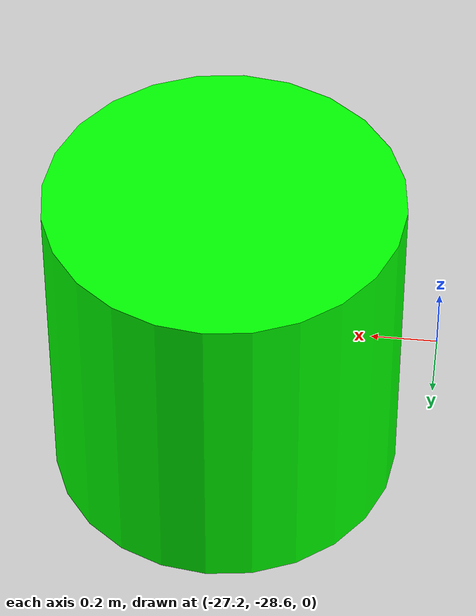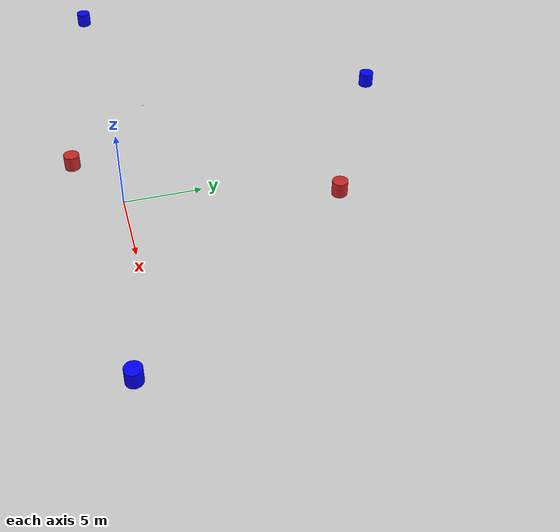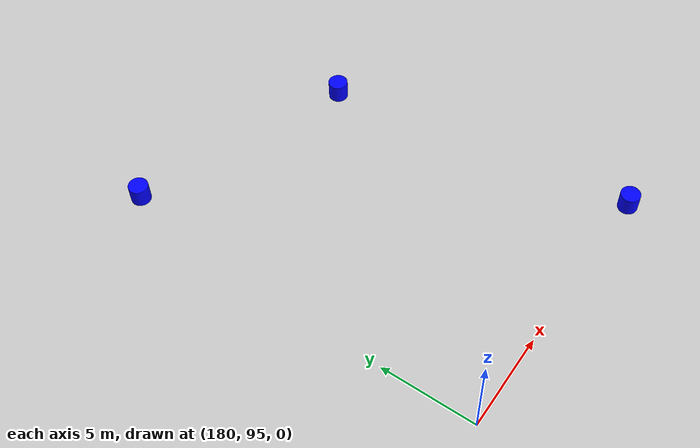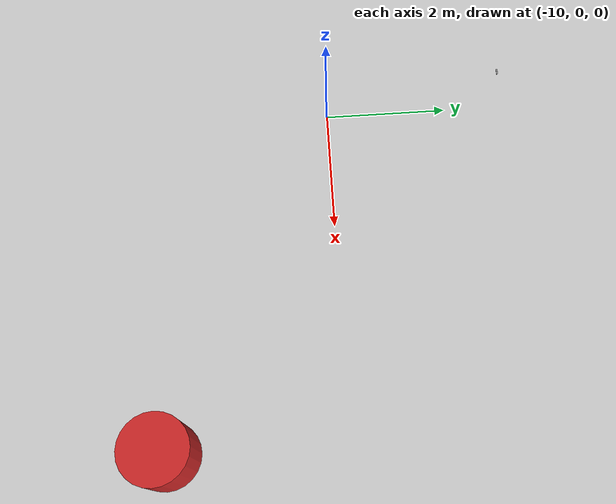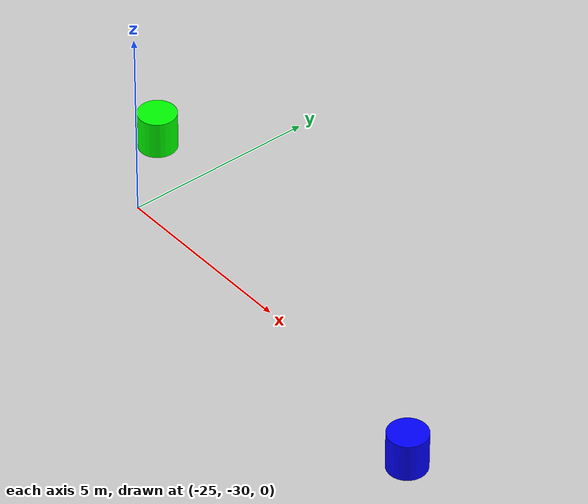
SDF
<sdf version="1.6">
 <world name="default">
  <light name="sun" type="directional">
   <pose>0 0 10 0 -0 0</pose>
   <diffuse>0.8 0.8 0.8 1</diffuse>
   <specular>0.2 0.2 0.2 1</specular>
   <attenuation>
    <range>1000</range>
    <constant>0.9</constant>
    <linear>0.01</linear>
    <quadratic>0.001</quadratic>
   </attenuation>
   <direction>-0.5 0.1 -0.9</direction>
  </light>
  <model name="ground_plane">
   <static>1</static>
   <link name="link">
    <collision name="collision">
     <geometry><plane><normal>0 0 1</normal><size>100 100</size></plane></geometry>
     <surface><friction><ode><mu>100</mu><mu2>50</mu2></ode></friction></surface>
    </collision>
    <visual name="visual">
     <cast_shadows>0</cast_shadows>
     <geometry><plane><normal>0 0 1</normal><size>100 100</size></plane></geometry>
     <material>
      <script><uri>file://media/materials/scripts/gazebo.material</uri><name>Gazebo/Grey</name></script>
     </material>
    </visual>
    <velocity_decay><linear>0</linear><angular>0</angular></velocity_decay>
   </link>
  </model>
  <physics name="default_physics" default="0" type="ode">
   <max_step_size>0.001</max_step_size>
   <real_time_factor>1</real_time_factor>
   <real_time_update_rate>1000</real_time_update_rate>
  </physics>
  <scene><ambient>0.4 0.4 0.4 1</ambient><background>0.7 0.7 0.7 1</background><shadows>1</shadows></scene>
  <spherical_coordinates>
   <surface_model>EARTH_WGS84</surface_model>
   <latitude_deg>0</latitude_deg>
   <longitude_deg>0</longitude_deg>
   <elevation>0</elevation>
   <heading_deg>0</heading_deg>
  </spherical_coordinates>
  <gravity>0 0 -9.8</gravity>
  <magnetic_field>6e-06 2.3e-05 -4.2e-05</magnetic_field>
  <atmosphere type="adiabatic"/>
  <model name="BlueBarrel">
   <link name="link_0_0">
    <inertial>
     <mass>1</mass>
     <inertia><ixx>0.145833</ixx><ixy>0</ixy><ixz>0</ixz><iyy>0.145833</iyy><iyz>0</iyz><izz>0.125</izz></inertia>
    </inertial>
    <visual name="visual">
     <geometry><cylinder><radius>0.5</radius><length>1</length></cylinder></geometry>
     <material>
      <lighting>1</lighting>
      <script><uri>file://media/materials/scripts/gazebo.material</uri><name>Gazebo/Grey</name></script>
      <ambient>0.3 0.3 0.3 1</ambient>
      <diffuse>0 0 1 1</diffuse>
      <specular>0.01 0.01 0.01 1</specular>
      <emissive>0 0 0 1</emissive>
      <shader type="vertex"><normal_map>__default__</normal_map></shader>
     </material>
    </visual>
    <collision name="collision">
     <geometry><cylinder><radius>0.5</radius><length>1</length></cylinder></geometry>
     <surface>
      <friction>
       <ode><mu>1</mu><mu2>1</mu2><fdir1>0 0 0</fdir1><slip1>0</slip1><slip2>0</slip2></ode>
       <torsional>
        <coefficient>1</coefficient>
        <patch_radius>0</patch_radius>
        <surface_radius>0</surface_radius>
        <use_patch_radius>1</use_patch_radius>
        <ode><slip>0</slip></ode>
       </torsional>
      </friction>
      <bounce><restitution_coefficient>0</restitution_coefficient><threshold>1e+06</threshold></bounce>
      <contact>
       <collide_without_contact>0</collide_without_contact>
       <collide_without_contact_bitmask>1</collide_without_contact_bitmask>
       <collide_bitmask>1</collide_bitmask>
       <ode>
        <soft_cfm>0</soft_cfm>
        <soft_erp>0.2</soft_erp>
        <kp>1e+13</kp>
        <kd>1</kd>
        <max_vel>0.01</max_vel>
        <min_depth>0</min_depth>
       </ode>
       <bullet>
        <split_impulse>1</split_impulse>
        <split_impulse_penetration_threshold>-0.01</split_impulse_penetration_threshold>
        <soft_cfm>0</soft_cfm>
        <soft_erp>0.2</soft_erp>
        <kp>1e+13</kp>
        <kd>1</kd>
       </bullet>
      </contact>
     </surface>
    </collision>
   </link>
   <static>0</static>
   <pose>14.243 -1.60021 0.499999 0 0 -0.035996</pose>
  </model>
  <model name="RedBarrel">
   <link name="link_0">
    <inertial>
     <mass>1</mass>
     <inertia><ixx>0.145833</ixx><ixy>0</ixy><ixz>0</ixz><iyy>0.145833</iyy><iyz>0</iyz><izz>0.125</izz></inertia>
    </inertial>
    <visual name="visual">
     <geometry><cylinder><radius>0.5</radius><length>1</length></cylinder></geometry>
     <material>
      <lighting>1</lighting>
      <script><uri>file://media/materials/scripts/gazebo.material</uri><name>Gazebo/Red</name></script>
      <ambient>0.3 0.3 0.3 1</ambient>
      <diffuse>1 0 0 1</diffuse>
      <specular>0.01 0.01 0.01 1</specular>
      <emissive>0 0 0 1</emissive>
      <shader type="vertex"><normal_map>__default__</normal_map></shader>
     </material>
    </visual>
    <collision name="collision">
     <geometry><cylinder><radius>0.5</radius><length>1</length></cylinder></geometry>
     <surface>
      <friction>
       <ode><mu>1</mu><mu2>1</mu2><fdir1>0 0 0</fdir1><slip1>0</slip1><slip2>0</slip2></ode>
       <torsional>
        <coefficient>1</coefficient>
        <patch_radius>0</patch_radius>
        <surface_radius>0</surface_radius>
        <use_patch_radius>1</use_patch_radius>
        <ode><slip>0</slip></ode>
       </torsional>
      </friction>
      <bounce><restitution_coefficient>0</restitution_coefficient><threshold>1e+06</threshold></bounce>
      <contact>
       <collide_without_contact>0</collide_without_contact>
       <collide_without_contact_bitmask>1</collide_without_contact_bitmask>
       <collide_bitmask>1</collide_bitmask>
       <ode>
        <soft_cfm>0</soft_cfm>
        <soft_erp>0.2</soft_erp>
        <kp>1e+13</kp>
        <kd>1</kd>
        <max_vel>0.01</max_vel>
        <min_depth>0</min_depth>
       </ode>
       <bullet>
        <split_impulse>1</split_impulse>
        <split_impulse_penetration_threshold>-0.01</split_impulse_penetration_threshold>
        <soft_cfm>0</soft_cfm>
        <soft_erp>0.2</soft_erp>
        <kp>1e+13</kp>
        <kd>1</kd>
       </bullet>
      </contact>
     </surface>
    </collision>
   </link>
   <static>0</static>
   <pose>-4.56456 -2.64972 0.499991 0 -0 0.002242</pose>
  </model>
  <model name="GreenBarrel">
   <link name="link_1">
    <inertial>
     <mass>1</mass>
     <inertia><ixx>0.145833</ixx><ixy>0</ixy><ixz>0</ixz><iyy>0.145833</iyy><iyz>0</iyz><izz>0.125</izz></inertia>
    </inertial>
    <visual name="visual">
     <geometry><cylinder><radius>0.5</radius><length>1</length></cylinder></geometry>
     <material>
      <lighting>1</lighting>
      <script><uri>file://media/materials/scripts/gazebo.material</uri><name>Gazebo/Grey</name></script>
      <ambient>0.3 0.3 0.3 1</ambient>
      <diffuse>0 1 0 1</diffuse>
      <specular>0.01 0.01 0.01 1</specular>
      <emissive>0 0 0 1</emissive>
      <shader type="vertex"><normal_map>__default__</normal_map></shader>
     </material>
    </visual>
    <collision name="collision">
     <geometry><cylinder><radius>0.5</radius><length>1</length></cylinder></geometry>
     <surface>
      <friction>
       <ode><mu>1</mu><mu2>1</mu2><fdir1>0 0 0</fdir1><slip1>0</slip1><slip2>0</slip2></ode>
       <torsional>
        <coefficient>1</coefficient>
        <patch_radius>0</patch_radius>
        <surface_radius>0</surface_radius>
        <use_patch_radius>1</use_patch_radius>
        <ode><slip>0</slip></ode>
       </torsional>
      </friction>
      <bounce><restitution_coefficient>0</restitution_coefficient><threshold>1e+06</threshold></bounce>
      <contact>
       <collide_without_contact>0</collide_without_contact>
       <collide_without_contact_bitmask>1</collide_without_contact_bitmask>
       <collide_bitmask>1</collide_bitmask>
       <ode>
        <soft_cfm>0</soft_cfm>
        <soft_erp>0.2</soft_erp>
        <kp>1e+13</kp>
        <kd>1</kd>
        <max_vel>0.01</max_vel>
        <min_depth>0</min_depth>
       </ode>
       <bullet>
        <split_impulse>1</split_impulse>
        <split_impulse_penetration_threshold>-0.01</split_impulse_penetration_threshold>
        <soft_cfm>0</soft_cfm>
        <soft_erp>0.2</soft_erp>
        <kp>1e+13</kp>
        <kd>1</kd>
       </bullet>
      </contact>
     </surface>
    </collision>
   </link>
   <static>0</static>
   <pose>-26.6074 -28.1343 0.499991 0 -0 0</pose>
  </model>
  <model name="RedBarrel_0">
   <link name="link_0">
    <inertial>
     <mass>1</mass>
     <inertia><ixx>0.145833</ixx><ixy>0</ixy><ixz>0</ixz><iyy>0.145833</iyy><iyz>0</iyz><izz>0.125</izz></inertia>
    </inertial>
    <visual name="visual">
     <geometry><cylinder><radius>0.5</radius><length>1</length></cylinder></geometry>
     <material>
      <lighting>1</lighting>
      <script><uri>file://media/materials/scripts/gazebo.material</uri><name>Gazebo/Red</name></script>
      <ambient>0.3 0.3 0.3 1</ambient>
      <diffuse>1 0 0 1</diffuse>
      <specular>0.01 0.01 0.01 1</specular>
      <emissive>0 0 0 1</emissive>
      <shader type="vertex"><normal_map>__default__</normal_map></shader>
     </material>
    </visual>
    <collision name="collision">
     <geometry><cylinder><radius>0.5</radius><length>1</length></cylinder></geometry>
     <surface>
      <friction>
       <ode><mu>1</mu><mu2>1</mu2><fdir1>0 0 0</fdir1><slip1>0</slip1><slip2>0</slip2></ode>
       <torsional>
        <coefficient>1</coefficient>
        <patch_radius>0</patch_radius>
        <surface_radius>0</surface_radius>
        <use_patch_radius>1</use_patch_radius>
        <ode><slip>0</slip></ode>
       </torsional>
      </friction>
      <bounce><restitution_coefficient>0</restitution_coefficient><threshold>1e+06</threshold></bounce>
      <contact>
       <collide_without_contact>0</collide_without_contact>
       <collide_without_contact_bitmask>1</collide_without_contact_bitmask>
       <collide_bitmask>1</collide_bitmask>
       <ode>
        <soft_cfm>0</soft_cfm>
        <soft_erp>0.2</soft_erp>
        <kp>1e+13</kp>
        <kd>1</kd>
        <max_vel>0.01</max_vel>
        <min_depth>0</min_depth>
       </ode>
       <bullet>
        <split_impulse>1</split_impulse>
        <split_impulse_penetration_threshold>-0.01</split_impulse_penetration_threshold>
        <soft_cfm>0</soft_cfm>
        <soft_erp>0.2</soft_erp>
        <kp>1e+13</kp>
        <kd>1</kd>
       </bullet>
      </contact>
     </surface>
    </collision>
   </link>
   <static>0</static>
   <pose>2.74759 13.2932 0.499992 3e-06 -1e-06 -0.002212</pose>
  </model>
  <light name="user_point_light_0" type="point">
   <pose>-15.9446 0.086762 1 0 -0 0</pose>
   <diffuse>0.5 0.5 0.5 1</diffuse>
   <specular>0.1 0.1 0.1 1</specular>
   <attenuation>
    <range>20</range>
    <constant>0.5</constant>
    <linear>0.01</linear>
    <quadratic>0.001</quadratic>
   </attenuation>
   <cast_shadows>0</cast_shadows>
   <direction>0 0 -1</direction>
  </light>
  <audio><device>default</device></audio>
  <model name="stone_10_2_5_1cm">
   <link name="link">
    <pose>0 0 0.005 0 -0 0</pose>
    <inertial>
     <mass>0.0628</mass>
     <inertia>
      <ixx>3.79417e-06</ixx>
      <ixy>0</ixy>
      <ixz>0</ixz>
      <iyy>5.28567e-05</iyy>
      <iyz>0</iyz>
      <izz>5.56042e-05</izz>
     </inertia>
    </inertial>
    <collision name="collision">
     <geometry><box><size>0.1 0.025 0.01</size></box></geometry>
     <surface>
      <contact>
       <poissons_ratio>0.15</poissons_ratio>
       <elastic_modulus>8e+10</elastic_modulus>
       <ode><kp>100000</kp><kd>100</kd><max_vel>100</max_vel><min_depth>0.001</min_depth></ode>
      </contact>
      <friction>
       <torsional>
        <coefficient>1</coefficient>
        <use_patch_radius>0</use_patch_radius>
        <surface_radius>0.01</surface_radius>
       </torsional>
      </friction>
     </surface>
    </collision>
    <visual name="visual">
     <geometry><box><size>0.1 0.025 0.01</size></box></geometry>
     <material>
      <script><uri>file://media/materials/scripts/gazebo.material</uri><name>Gazebo/Grey</name></script>
     </material>
    </visual>
   </link>
   <pose>-10.7066 3.01548 -0.001001 0 -0 0</pose>
  </model>
  <model name="BlueBarrel_clone">
   <link name="link_0_0">
    <inertial>
     <mass>1</mass>
     <inertia><ixx>0.145833</ixx><ixy>0</ixy><ixz>0</ixz><iyy>0.145833</iyy><iyz>0</iyz><izz>0.125</izz></inertia>
    </inertial>
    <visual name="visual">
     <geometry><cylinder><radius>0.5</radius><length>1</length></cylinder></geometry>
     <material>
      <lighting>1</lighting>
      <script><uri>file://media/materials/scripts/gazebo.material</uri><name>Gazebo/Grey</name></script>
      <ambient>0.3 0.3 0.3 1</ambient>
      <diffuse>0 0 1 1</diffuse>
      <specular>0.01 0.01 0.01 1</specular>
      <emissive>0 0 0 1</emissive>
      <shader type="vertex"><normal_map>__default__</normal_map></shader>
     </material>
    </visual>
    <collision name="collision">
     <geometry><cylinder><radius>0.5</radius><length>1</length></cylinder></geometry>
     <surface>
      <friction>
       <ode><mu>1</mu><mu2>1</mu2><fdir1>0 0 0</fdir1><slip1>0</slip1><slip2>0</slip2></ode>
       <torsional>
        <coefficient>1</coefficient>
        <patch_radius>0</patch_radius>
        <surface_radius>0</surface_radius>
        <use_patch_radius>1</use_patch_radius>
        <ode><slip>0</slip></ode>
       </torsional>
      </friction>
      <bounce><restitution_coefficient>0</restitution_coefficient><threshold>1e+06</threshold></bounce>
      <contact>
       <collide_without_contact>0</collide_without_contact>
       <collide_without_contact_bitmask>1</collide_without_contact_bitmask>
       <collide_bitmask>1</collide_bitmask>
       <ode>
        <soft_cfm>0</soft_cfm>
        <soft_erp>0.2</soft_erp>
        <kp>1e+13</kp>
        <kd>1</kd>
        <max_vel>0.01</max_vel>
        <min_depth>0</min_depth>
       </ode>
       <bullet>
        <split_impulse>1</split_impulse>
        <split_impulse_penetration_threshold>-0.01</split_impulse_penetration_threshold>
        <soft_cfm>0</soft_cfm>
        <soft_erp>0.2</soft_erp>
        <kp>1e+13</kp>
        <kd>1</kd>
       </bullet>
      </contact>
     </surface>
    </collision>
   </link>
   <static>0</static>
   <pose>181.242 115.226 0.499993 -3e-06 3e-06 -0.035996</pose>
  </model>
  <model name="BlueBarrel_clone_0">
   <link name="link_0_0">
    <inertial>
     <mass>1</mass>
     <inertia><ixx>0.145833</ixx><ixy>0</ixy><ixz>0</ixz><iyy>0.145833</iyy><iyz>0</iyz><izz>0.125</izz></inertia>
    </inertial>
    <visual name="visual">
     <geometry><cylinder><radius>0.5</radius><length>1</length></cylinder></geometry>
     <material>
      <lighting>1</lighting>
      <script><uri>file://media/materials/scripts/gazebo.material</uri><name>Gazebo/Grey</name></script>
      <ambient>0.3 0.3 0.3 1</ambient>
      <diffuse>0 0 1 1</diffuse>
      <specular>0.01 0.01 0.01 1</specular>
      <emissive>0 0 0 1</emissive>
      <shader type="vertex"><normal_map>__default__</normal_map></shader>
     </material>
    </visual>
    <collision name="collision">
     <geometry><cylinder><radius>0.5</radius><length>1</length></cylinder></geometry>
     <surface>
      <friction>
       <ode><mu>1</mu><mu2>1</mu2><fdir1>0 0 0</fdir1><slip1>0</slip1><slip2>0</slip2></ode>
       <torsional>
        <coefficient>1</coefficient>
        <patch_radius>0</patch_radius>
        <surface_radius>0</surface_radius>
        <use_patch_radius>1</use_patch_radius>
        <ode><slip>0</slip></ode>
       </torsional>
      </friction>
      <bounce><restitution_coefficient>0</restitution_coefficient><threshold>1e+06</threshold></bounce>
      <contact>
       <collide_without_contact>0</collide_without_contact>
       <collide_without_contact_bitmask>1</collide_without_contact_bitmask>
       <collide_bitmask>1</collide_bitmask>
       <ode>
        <soft_cfm>0</soft_cfm>
        <soft_erp>0.2</soft_erp>
        <kp>1e+13</kp>
        <kd>1</kd>
        <max_vel>0.01</max_vel>
        <min_depth>0</min_depth>
       </ode>
       <bullet>
        <split_impulse>1</split_impulse>
        <split_impulse_penetration_threshold>-0.01</split_impulse_penetration_threshold>
        <soft_cfm>0</soft_cfm>
        <soft_erp>0.2</soft_erp>
        <kp>1e+13</kp>
        <kd>1</kd>
       </bullet>
      </contact>
     </surface>
    </collision>
   </link>
   <static>0</static>
   <pose>192.452 111.096 0.499999 0 0 -0.035996</pose>
  </model>
  <model name="BlueBarrel_clone_1">
   <link name="link_0_0">
    <inertial>
     <mass>1</mass>
     <inertia><ixx>0.145833</ixx><ixy>0</ixy><ixz>0</ixz><iyy>0.145833</iyy><iyz>0</iyz><izz>0.125</izz></inertia>
    </inertial>
    <visual name="visual">
     <geometry><cylinder><radius>0.5</radius><length>1</length></cylinder></geometry>
     <material>
      <lighting>1</lighting>
      <script><uri>file://media/materials/scripts/gazebo.material</uri><name>Gazebo/Grey</name></script>
      <ambient>0.3 0.3 0.3 1</ambient>
      <diffuse>0 0 1 1</diffuse>
      <specular>0.01 0.01 0.01 1</specular>
      <emissive>0 0 0 1</emissive>
      <shader type="vertex"><normal_map>__default__</normal_map></shader>
     </material>
    </visual>
    <collision name="collision">
     <geometry><cylinder><radius>0.5</radius><length>1</length></cylinder></geometry>
     <surface>
      <friction>
       <ode><mu>1</mu><mu2>1</mu2><fdir1>0 0 0</fdir1><slip1>0</slip1><slip2>0</slip2></ode>
       <torsional>
        <coefficient>1</coefficient>
        <patch_radius>0</patch_radius>
        <surface_radius>0</surface_radius>
        <use_patch_radius>1</use_patch_radius>
        <ode><slip>0</slip></ode>
       </torsional>
      </friction>
      <bounce><restitution_coefficient>0</restitution_coefficient><threshold>1e+06</threshold></bounce>
      <contact>
       <collide_without_contact>0</collide_without_contact>
       <collide_without_contact_bitmask>1</collide_without_contact_bitmask>
       <collide_bitmask>1</collide_bitmask>
       <ode>
        <soft_cfm>0</soft_cfm>
        <soft_erp>0.2</soft_erp>
        <kp>1e+13</kp>
        <kd>1</kd>
        <max_vel>0.01</max_vel>
        <min_depth>0</min_depth>
       </ode>
       <bullet>
        <split_impulse>1</split_impulse>
        <split_impulse_penetration_threshold>-0.01</split_impulse_penetration_threshold>
        <soft_cfm>0</soft_cfm>
        <soft_erp>0.2</soft_erp>
        <kp>1e+13</kp>
        <kd>1</kd>
       </bullet>
      </contact>
     </surface>
    </collision>
   </link>
   <static>0</static>
   <pose>194.277 94.8193 0.499993 -3e-06 3e-06 -0.035996</pose>
  </model>
  <model name="BlueBarrel_clone_2">
   <link name="link_0_0">
    <inertial>
     <mass>1</mass>
     <inertia><ixx>0.145833</ixx><ixy>0</ixy><ixz>0</ixz><iyy>0.145833</iyy><iyz>0</iyz><izz>0.125</izz></inertia>
    </inertial>
    <visual name="visual">
     <geometry><cylinder><radius>0.5</radius><length>1</length></cylinder></geometry>
     <material>
      <lighting>1</lighting>
      <script><uri>file://media/materials/scripts/gazebo.material</uri><name>Gazebo/Grey</name></script>
      <ambient>0.3 0.3 0.3 1</ambient>
      <diffuse>0 0 1 1</diffuse>
      <specular>0.01 0.01 0.01 1</specular>
      <emissive>0 0 0 1</emissive>
      <shader type="vertex"><normal_map>__default__</normal_map></shader>
     </material>
    </visual>
    <collision name="collision">
     <geometry><cylinder><radius>0.5</radius><length>1</length></cylinder></geometry>
     <surface>
      <friction>
       <ode><mu>1</mu><mu2>1</mu2><fdir1>0 0 0</fdir1><slip1>0</slip1><slip2>0</slip2></ode>
       <torsional>
        <coefficient>1</coefficient>
        <patch_radius>0</patch_radius>
        <surface_radius>0</surface_radius>
        <use_patch_radius>1</use_patch_radius>
        <ode><slip>0</slip></ode>
       </torsional>
      </friction>
      <bounce><restitution_coefficient>0</restitution_coefficient><threshold>1e+06</threshold></bounce>
      <contact>
       <collide_without_contact>0</collide_without_contact>
       <collide_without_contact_bitmask>1</collide_without_contact_bitmask>
       <collide_bitmask>1</collide_bitmask>
       <ode>
        <soft_cfm>0</soft_cfm>
        <soft_erp>0.2</soft_erp>
        <kp>1e+13</kp>
        <kd>1</kd>
        <max_vel>0.01</max_vel>
        <min_depth>0</min_depth>
       </ode>
       <bullet>
        <split_impulse>1</split_impulse>
        <split_impulse_penetration_threshold>-0.01</split_impulse_penetration_threshold>
        <soft_cfm>0</soft_cfm>
        <soft_erp>0.2</soft_erp>
        <kp>1e+13</kp>
        <kd>1</kd>
       </bullet>
      </contact>
     </surface>
    </collision>
   </link>
   <static>0</static>
   <pose>-24.3651 0.418681 0.499999 0 0 -0.035996</pose>
  </model>
  <model name="BlueBarrel_clone_3">
   <link name="link_0_0">
    <inertial>
     <mass>1</mass>
     <inertia><ixx>0.145833</ixx><ixy>0</ixy><ixz>0</ixz><iyy>0.145833</iyy><iyz>0</iyz><izz>0.125</izz></inertia>
    </inertial>
    <visual name="visual">
     <geometry><cylinder><radius>0.5</radius><length>1</length></cylinder></geometry>
     <material>
      <lighting>1</lighting>
      <script><uri>file://media/materials/scripts/gazebo.material</uri><name>Gazebo/Grey</name></script>
      <ambient>0.3 0.3 0.3 1</ambient>
      <diffuse>0 0 1 1</diffuse>
      <specular>0.01 0.01 0.01 1</specular>
      <emissive>0 0 0 1</emissive>
      <shader type="vertex"><normal_map>__default__</normal_map></shader>
     </material>
    </visual>
    <collision name="collision">
     <geometry><cylinder><radius>0.5</radius><length>1</length></cylinder></geometry>
     <surface>
      <friction>
       <ode><mu>1</mu><mu2>1</mu2><fdir1>0 0 0</fdir1><slip1>0</slip1><slip2>0</slip2></ode>
       <torsional>
        <coefficient>1</coefficient>
        <patch_radius>0</patch_radius>
        <surface_radius>0</surface_radius>
        <use_patch_radius>1</use_patch_radius>
        <ode><slip>0</slip></ode>
       </torsional>
      </friction>
      <bounce><restitution_coefficient>0</restitution_coefficient><threshold>1e+06</threshold></bounce>
      <contact>
       <collide_without_contact>0</collide_without_contact>
       <collide_without_contact_bitmask>1</collide_without_contact_bitmask>
       <collide_bitmask>1</collide_bitmask>
       <ode>
        <soft_cfm>0</soft_cfm>
        <soft_erp>0.2</soft_erp>
        <kp>1e+13</kp>
        <kd>1</kd>
        <max_vel>0.01</max_vel>
        <min_depth>0</min_depth>
       </ode>
       <bullet>
        <split_impulse>1</split_impulse>
        <split_impulse_penetration_threshold>-0.01</split_impulse_penetration_threshold>
        <soft_cfm>0</soft_cfm>
        <soft_erp>0.2</soft_erp>
        <kp>1e+13</kp>
        <kd>1</kd>
       </bullet>
      </contact>
     </surface>
    </collision>
   </link>
   <static>0</static>
   <pose>-9.14868 19.5755 0.499999 0 0 -0.035996</pose>
  </model>
  <model name="BlueBarrel_clone_4">
   <link name="link_0_0">
    <inertial>
     <mass>1</mass>
     <inertia><ixx>0.145833</ixx><ixy>0</ixy><ixz>0</ixz><iyy>0.145833</iyy><iyz>0</iyz><izz>0.125</izz></inertia>
    </inertial>
    <visual name="visual">
     <geometry><cylinder><radius>0.5</radius><length>1</length></cylinder></geometry>
     <material>
      <lighting>1</lighting>
      <script><uri>file://media/materials/scripts/gazebo.material</uri><name>Gazebo/Grey</name></script>
      <ambient>0.3 0.3 0.3 1</ambient>
      <diffuse>0 0 1 1</diffuse>
      <specular>0.01 0.01 0.01 1</specular>
      <emissive>0 0 0 1</emissive>
      <shader type="vertex"><normal_map>__default__</normal_map></shader>
     </material>
    </visual>
    <collision name="collision">
     <geometry><cylinder><radius>0.5</radius><length>1</length></cylinder></geometry>
     <surface>
      <friction>
       <ode><mu>1</mu><mu2>1</mu2><fdir1>0 0 0</fdir1><slip1>0</slip1><slip2>0</slip2></ode>
       <torsional>
        <coefficient>1</coefficient>
        <patch_radius>0</patch_radius>
        <surface_radius>0</surface_radius>
        <use_patch_radius>1</use_patch_radius>
        <ode><slip>0</slip></ode>
       </torsional>
      </friction>
      <bounce><restitution_coefficient>0</restitution_coefficient><threshold>1e+06</threshold></bounce>
      <contact>
       <collide_without_contact>0</collide_without_contact>
       <collide_without_contact_bitmask>1</collide_without_contact_bitmask>
       <collide_bitmask>1</collide_bitmask>
       <ode>
        <soft_cfm>0</soft_cfm>
        <soft_erp>0.2</soft_erp>
        <kp>1e+13</kp>
        <kd>1</kd>
        <max_vel>0.01</max_vel>
        <min_depth>0</min_depth>
       </ode>
       <bullet>
        <split_impulse>1</split_impulse>
        <split_impulse_penetration_threshold>-0.01</split_impulse_penetration_threshold>
        <soft_cfm>0</soft_cfm>
        <soft_erp>0.2</soft_erp>
        <kp>1e+13</kp>
        <kd>1</kd>
       </bullet>
      </contact>
     </surface>
    </collision>
   </link>
   <static>0</static>
   <pose>-13.9653 -30.9759 0.499991 0 -0 -0.035996</pose>
  </model>
 </world>
</sdf>
